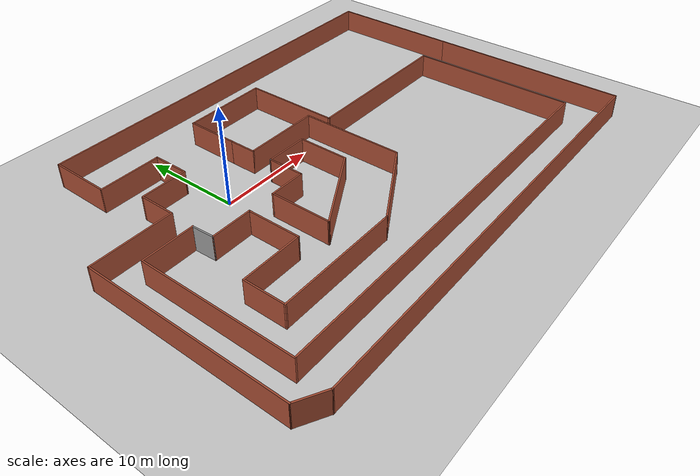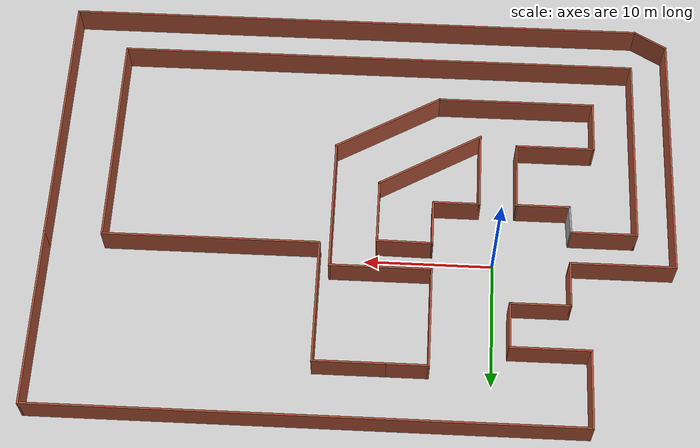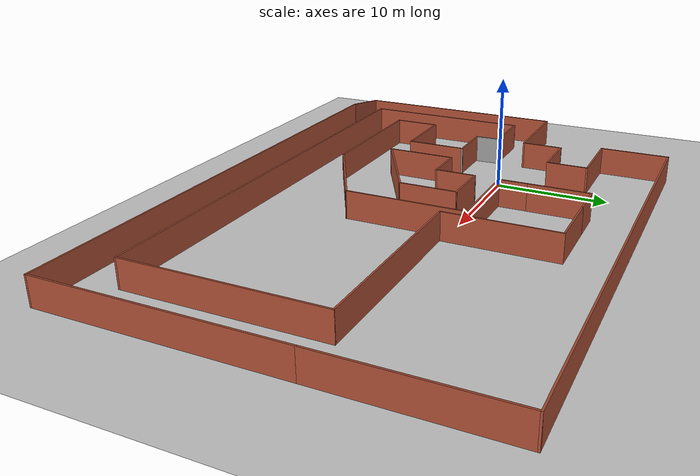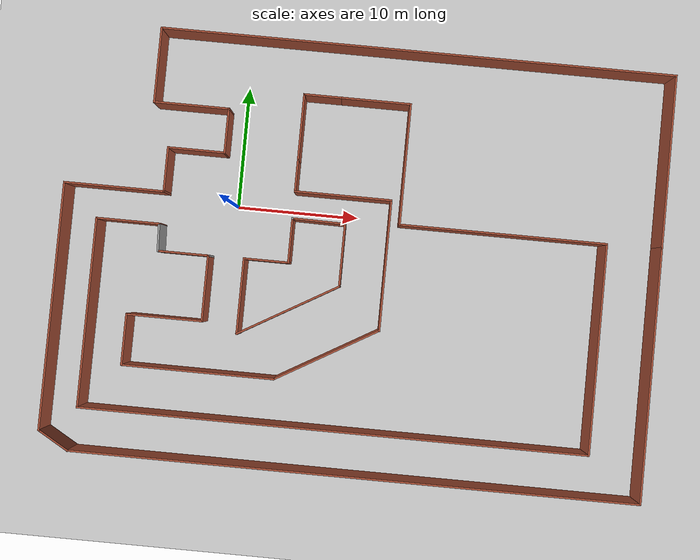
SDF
<sdf version="1.7">
 <world name="default">
  <light name="sun" type="directional">
   <pose>0 0 10 0 -0 0</pose>
   <diffuse>0.8 0.8 0.8 1</diffuse>
   <specular>0.2 0.2 0.2 1</specular>
   <attenuation>
    <range>1000</range>
    <constant>0.9</constant>
    <linear>0.01</linear>
    <quadratic>0.001</quadratic>
   </attenuation>
   <direction>-0.5 0.1 -0.9</direction>
   <spot><inner_angle>0</inner_angle><outer_angle>0</outer_angle><falloff>0</falloff></spot>
  </light>
  <model name="ground_plane">
   <static>1</static>
   <link name="link">
    <collision name="collision">
     <geometry><plane><normal>0 0 1</normal><size>100 100</size></plane></geometry>
     <surface><friction><ode><mu>100</mu><mu2>50</mu2></ode></friction></surface>
    </collision>
    <visual name="visual">
     <cast_shadows>0</cast_shadows>
     <geometry><plane><normal>0 0 1</normal><size>100 100</size></plane></geometry>
     <material>
      <script><uri>file://media/materials/scripts/gazebo.material</uri><name>Gazebo/Grey</name></script>
     </material>
    </visual>
   </link>
  </model>
  <gravity>0 0 -9.8</gravity>
  <magnetic_field>6e-06 2.3e-05 -4.2e-05</magnetic_field>
  <atmosphere type="adiabatic"/>
  <physics type="ode">
   <max_step_size>0.001</max_step_size>
   <real_time_factor>1</real_time_factor>
   <real_time_update_rate>1000</real_time_update_rate>
  </physics>
  <scene><ambient>0.4 0.4 0.4 1</ambient><background>0.7 0.7 0.7 1</background><shadows>1</shadows></scene>
  <spherical_coordinates>
   <surface_model>EARTH_WGS84</surface_model>
   <latitude_deg>0</latitude_deg>
   <longitude_deg>0</longitude_deg>
   <elevation>0</elevation>
   <heading_deg>0</heading_deg>
  </spherical_coordinates>
  <model name="long_loof_model">
   <pose>10.4182 -3.58846 0 0 -0 0</pose>
   <link name="Wall_10">
    <collision name="Wall_10_Collision">
     <geometry><box><size>3.75 0.15 2.5</size></box></geometry>
     <pose>0 0 1.25 0 -0 0</pose>
    </collision>
    <visual name="Wall_10_Visual">
     <pose>0 0 1.25 0 -0 0</pose>
     <geometry><box><size>3.75 0.15 2.5</size></box></geometry>
     <material>
      <script><uri>file://media/materials/scripts/gazebo.material</uri><name>Gazebo/Bricks</name></script>
      <ambient>1 1 1 1</ambient>
     </material>
     <meta><layer>0</layer></meta>
    </visual>
    <pose>-7.4308 -0.683311 0 0 -0 3.14159</pose>
   </link>
   <link name="Wall_11">
    <collision name="Wall_11_Collision">
     <geometry><box><size>0.16 0.15 2.5</size></box></geometry>
     <pose>0 0 1.25 0 -0 0</pose>
    </collision>
    <visual name="Wall_11_Visual">
     <pose>0 0 1.25 0 -0 0</pose>
     <geometry><box><size>0.16 0.15 2.5</size></box></geometry>
     <material>
      <script><uri>file://media/materials/scripts/gazebo.material</uri><name>Gazebo/Grey</name></script>
      <ambient>0 0 0 1</ambient>
     </material>
     <meta><layer>0</layer></meta>
    </visual>
    <pose>-9.2258 -0.683311 0 0 -0 0</pose>
   </link>
   <link name="Wall_13">
    <collision name="Wall_13_Collision">
     <geometry><box><size>4.25 0.15 2.5</size></box></geometry>
     <pose>0 0 1.25 0 -0 0</pose>
    </collision>
    <visual name="Wall_13_Visual">
     <pose>0 0 1.25 0 -0 0</pose>
     <geometry><box><size>4.25 0.15 2.5</size></box></geometry>
     <material>
      <script><uri>file://media/materials/scripts/gazebo.material</uri><name>Gazebo/Bricks</name></script>
      <ambient>1 1 1 1</ambient>
     </material>
     <meta><layer>0</layer></meta>
    </visual>
    <pose>-14.1883 -0.724218 0 0 -0 0</pose>
   </link>
   <link name="Wall_14">
    <collision name="Wall_14_Collision">
     <geometry><box><size>0.16 0.15 2.5</size></box></geometry>
     <pose>0 0 1.25 0 -0 0</pose>
    </collision>
    <visual name="Wall_14_Visual">
     <pose>0 0 1.25 0 -0 0</pose>
     <geometry><box><size>0.16 0.15 2.5</size></box></geometry>
     <material>
      <script><uri>file://media/materials/scripts/gazebo.material</uri><name>Gazebo/Grey</name></script>
      <ambient>0 0 0 1</ambient>
     </material>
     <meta><layer>0</layer></meta>
    </visual>
    <pose>-12.1333 -0.724218 0 0 -0 0</pose>
   </link>
   <link name="Wall_15">
    <collision name="Wall_15_Collision">
     <geometry><box><size>8 0.15 2.5</size></box></geometry>
     <pose>0 0 1.25 0 -0 0</pose>
    </collision>
    <visual name="Wall_15_Visual">
     <pose>0 0 1.25 0 -0 0</pose>
     <geometry><box><size>8 0.15 2.5</size></box></geometry>
     <material>
      <script><uri>file://media/materials/scripts/gazebo.material</uri><name>Gazebo/Bricks</name></script>
      <ambient>1 1 1 1</ambient>
     </material>
     <meta><layer>0</layer></meta>
    </visual>
    <pose>-1.71325 5.12578 0 0 -0 0</pose>
   </link>
   <link name="Wall_16">
    <collision name="Wall_16_Collision">
     <geometry><box><size>10.75 0.15 2.5</size></box></geometry>
     <pose>0 0 1.25 0 -0 0</pose>
    </collision>
    <visual name="Wall_16_Visual">
     <pose>0 0 1.25 0 -0 0</pose>
     <geometry><box><size>10.75 0.15 2.5</size></box></geometry>
     <material>
      <script><uri>file://media/materials/scripts/gazebo.material</uri><name>Gazebo/Bricks</name></script>
      <ambient>1 1 1 1</ambient>
     </material>
     <meta><layer>0</layer></meta>
    </visual>
    <pose>2.21175 -0.174218 0 0 -0 -1.5708</pose>
   </link>
   <link name="Wall_17">
    <collision name="Wall_17_Collision">
     <geometry><box><size>9.5 0.15 2.5</size></box></geometry>
     <pose>0 0 1.25 0 -0 0</pose>
    </collision>
    <visual name="Wall_17_Visual">
     <pose>0 0 1.25 0 -0 0</pose>
     <geometry><box><size>9.5 0.15 2.5</size></box></geometry>
     <material>
      <script><uri>file://media/materials/scripts/gazebo.material</uri><name>Gazebo/Bricks</name></script>
      <ambient>1 1 1 1</ambient>
     </material>
     <meta><layer>0</layer></meta>
    </visual>
    <pose>-1.83692 -7.81172 0 0 -0 -2.61799</pose>
   </link>
   <link name="Wall_18">
    <collision name="Wall_18_Collision">
     <geometry><box><size>12.5 0.15 2.5</size></box></geometry>
     <pose>0 0 1.25 0 -0 0</pose>
    </collision>
    <visual name="Wall_18_Visual">
     <pose>0 0 1.25 0 -0 0</pose>
     <geometry><box><size>12.5 0.15 2.5</size></box></geometry>
     <material>
      <script><uri>file://media/materials/scripts/gazebo.material</uri><name>Gazebo/Bricks</name></script>
      <ambient>1 1 1 1</ambient>
     </material>
     <meta><layer>0</layer></meta>
    </visual>
    <pose>-12.0606 -10.1492 0 0 -0 3.14159</pose>
   </link>
   <link name="Wall_19">
    <collision name="Wall_19_Collision">
     <geometry><box><size>4.25 0.15 2.5</size></box></geometry>
     <pose>0 0 1.25 0 -0 0</pose>
    </collision>
    <visual name="Wall_19_Visual">
     <pose>0 0 1.25 0 -0 0</pose>
     <geometry><box><size>4.25 0.15 2.5</size></box></geometry>
     <material>
      <script><uri>file://media/materials/scripts/gazebo.material</uri><name>Gazebo/Bricks</name></script>
      <ambient>1 1 1 1</ambient>
     </material>
     <meta><layer>0</layer></meta>
    </visual>
    <pose>-18.2356 -8.09922 0 0 -0 1.5708</pose>
   </link>
   <link name="Wall_20">
    <collision name="Wall_20_Collision">
     <geometry><box><size>6.25 0.15 2.5</size></box></geometry>
     <pose>0 0 1.25 0 -0 0</pose>
    </collision>
    <visual name="Wall_20_Visual">
     <pose>0 0 1.25 0 -0 0</pose>
     <geometry><box><size>6.25 0.15 2.5</size></box></geometry>
     <material>
      <script><uri>file://media/materials/scripts/gazebo.material</uri><name>Gazebo/Bricks</name></script>
      <ambient>1 1 1 1</ambient>
     </material>
     <meta><layer>0</layer></meta>
    </visual>
    <pose>-15.1856 -6.04922 0 0 -0 0</pose>
   </link>
   <link name="Wall_21">
    <collision name="Wall_21_Collision">
     <geometry><box><size>5.475 0.15 2.5</size></box></geometry>
     <pose>0 0 1.25 0 -0 0</pose>
    </collision>
    <visual name="Wall_21_Visual">
     <pose>0 0 1.25 0 -0 0</pose>
     <geometry><box><size>5.475 0.15 2.5</size></box></geometry>
     <material>
      <script><uri>file://media/materials/scripts/gazebo.material</uri><name>Gazebo/Bricks</name></script>
      <ambient>1 1 1 1</ambient>
     </material>
     <meta><layer>0</layer></meta>
    </visual>
    <pose>-12.1369 -3.38672 0 0 -0 1.5713</pose>
   </link>
   <link name="Wall_22">
    <collision name="Wall_22_Collision">
     <geometry><box><size>0.16 0.15 2.5</size></box></geometry>
     <pose>0 0 1.25 0 -0 0</pose>
    </collision>
    <visual name="Wall_22_Visual">
     <pose>0 0 1.25 0 -0 0</pose>
     <geometry><box><size>0.16 0.15 2.5</size></box></geometry>
     <material>
      <script><uri>file://media/materials/scripts/gazebo.material</uri><name>Gazebo/Grey</name></script>
      <ambient>0 0 0 1</ambient>
     </material>
     <meta><layer>0</layer></meta>
    </visual>
    <pose>-12.1333 -0.724218 0 0 -0 0</pose>
   </link>
   <link name="Wall_23">
    <collision name="Wall_23_Collision">
     <geometry><box><size>6.25 0.15 2.5</size></box></geometry>
     <pose>0 0 1.25 0 -0 0</pose>
    </collision>
    <visual name="Wall_23_Visual">
     <pose>0 0 1.25 0 -0 0</pose>
     <geometry><box><size>6.25 0.15 2.5</size></box></geometry>
     <material>
      <script><uri>file://media/materials/scripts/gazebo.material</uri><name>Gazebo/Bricks</name></script>
      <ambient>1 1 1 1</ambient>
     </material>
     <meta><layer>0</layer></meta>
    </visual>
    <pose>-9.2308 -3.73331 0 0 -0 -1.5708</pose>
   </link>
   <link name="Wall_24">
    <collision name="Wall_24_Collision">
     <geometry><box><size>9.25 0.15 2.5</size></box></geometry>
     <pose>0 0 1.25 0 -0 0</pose>
    </collision>
    <visual name="Wall_24_Visual">
     <pose>0 0 1.25 0 -0 0</pose>
     <geometry><box><size>9.25 0.15 2.5</size></box></geometry>
     <material>
      <script><uri>file://media/materials/scripts/gazebo.material</uri><name>Gazebo/Bricks</name></script>
      <ambient>1 1 1 1</ambient>
     </material>
     <meta><layer>0</layer></meta>
    </visual>
    <pose>-5.29038 -4.50831 0 0 -0 0.523599</pose>
   </link>
   <link name="Wall_25">
    <collision name="Wall_25_Collision">
     <geometry><box><size>5.25 0.15 2.5</size></box></geometry>
     <pose>0 0 1.25 0 -0 0</pose>
    </collision>
    <visual name="Wall_25_Visual">
     <pose>0 0 1.25 0 -0 0</pose>
     <geometry><box><size>5.25 0.15 2.5</size></box></geometry>
     <material>
      <script><uri>file://media/materials/scripts/gazebo.material</uri><name>Gazebo/Bricks</name></script>
      <ambient>1 1 1 1</ambient>
     </material>
     <meta><layer>0</layer></meta>
    </visual>
    <pose>-1.34997 0.316689 0 0 -0 1.5708</pose>
   </link>
   <link name="Wall_26">
    <collision name="Wall_26_Collision">
     <geometry><box><size>4.43112 0.15 2.5</size></box></geometry>
     <pose>0 0 1.25 0 -0 0</pose>
    </collision>
    <visual name="Wall_26_Visual">
     <pose>0 0 1.25 0 -0 0</pose>
     <geometry><box><size>4.43112 0.15 2.5</size></box></geometry>
     <material>
      <script><uri>file://media/materials/scripts/gazebo.material</uri><name>Gazebo/Bricks</name></script>
      <ambient>1 1 1 1</ambient>
     </material>
     <meta><layer>0</layer></meta>
    </visual>
    <pose>-3.49038 2.89169 0 0 -0 3.12991</pose>
   </link>
   <link name="Wall_27">
    <collision name="Wall_27_Collision">
     <geometry><box><size>0.16 0.15 2.5</size></box></geometry>
     <pose>0 0 1.25 0 -0 0</pose>
    </collision>
    <visual name="Wall_27_Visual">
     <pose>0 0 1.25 0 -0 0</pose>
     <geometry><box><size>0.16 0.15 2.5</size></box></geometry>
     <material>
      <script><uri>file://media/materials/scripts/gazebo.material</uri><name>Gazebo/Grey</name></script>
      <ambient>0 0 0 1</ambient>
     </material>
     <meta><layer>0</layer></meta>
    </visual>
    <pose>-5.6258 2.91669 0 0 -0 0</pose>
   </link>
   <link name="Wall_28">
    <collision name="Wall_28_Collision">
     <geometry><box><size>4.75 0.15 2.5</size></box></geometry>
     <pose>0 0 1.25 0 -0 0</pose>
    </collision>
    <visual name="Wall_28_Visual">
     <pose>0 0 1.25 0 -0 0</pose>
     <geometry><box><size>4.75 0.15 2.5</size></box></geometry>
     <material>
      <script><uri>file://media/materials/scripts/gazebo.material</uri><name>Gazebo/Bricks</name></script>
      <ambient>1 1 1 1</ambient>
     </material>
     <meta><layer>0</layer></meta>
    </visual>
    <pose>-13.9383 7.72578 0 0 -0 0</pose>
   </link>
   <link name="Wall_29">
    <collision name="Wall_29_Collision">
     <geometry><box><size>3.75 0.15 2.5</size></box></geometry>
     <pose>0 0 1.25 0 -0 0</pose>
    </collision>
    <visual name="Wall_29_Visual">
     <pose>0 0 1.25 0 -0 0</pose>
     <geometry><box><size>3.75 0.15 2.5</size></box></geometry>
     <material>
      <script><uri>file://media/materials/scripts/gazebo.material</uri><name>Gazebo/Bricks</name></script>
      <ambient>1 1 1 1</ambient>
     </material>
     <meta><layer>0</layer></meta>
    </visual>
    <pose>-11.6383 9.52578 0 0 -0 1.5708</pose>
   </link>
   <link name="Wall_30">
    <collision name="Wall_30_Collision">
     <geometry><box><size>6.25 0.15 2.5</size></box></geometry>
     <pose>0 0 1.25 0 -0 0</pose>
    </collision>
    <visual name="Wall_30_Visual">
     <pose>0 0 1.25 0 -0 0</pose>
     <geometry><box><size>6.25 0.15 2.5</size></box></geometry>
     <material>
      <script><uri>file://media/materials/scripts/gazebo.material</uri><name>Gazebo/Bricks</name></script>
      <ambient>1 1 1 1</ambient>
     </material>
     <meta><layer>0</layer></meta>
    </visual>
    <pose>-14.6883 11.3258 0 0 -0 3.14159</pose>
   </link>
   <link name="Wall_31">
    <collision name="Wall_31_Collision">
     <geometry><box><size>6.25 0.15 2.5</size></box></geometry>
     <pose>0 0 1.25 0 -0 0</pose>
    </collision>
    <visual name="Wall_31_Visual">
     <pose>0 0 1.25 0 -0 0</pose>
     <geometry><box><size>6.25 0.15 2.5</size></box></geometry>
     <material>
      <script><uri>file://media/materials/scripts/gazebo.material</uri><name>Gazebo/Bricks</name></script>
      <ambient>1 1 1 1</ambient>
     </material>
     <meta><layer>0</layer></meta>
    </visual>
    <pose>-17.7382 14.376 0 0 -0 1.57078</pose>
   </link>
   <link name="Wall_32">
    <collision name="Wall_32_Collision">
     <geometry><box><size>42.254 0.15 2.5</size></box></geometry>
     <pose>0 0 1.25 0 -0 0</pose>
    </collision>
    <visual name="Wall_32_Visual">
     <pose>0 0 1.25 0 -0 0</pose>
     <geometry><box><size>42.254 0.15 2.5</size></box></geometry>
     <material>
      <script><uri>file://media/materials/scripts/gazebo.material</uri><name>Gazebo/Bricks</name></script>
      <ambient>1 1 1 1</ambient>
     </material>
     <meta><layer>0</layer></meta>
    </visual>
    <pose>3.31384 17.4263 0 0 -0 0</pose>
   </link>
   <link name="Wall_33">
    <collision name="Wall_33_Collision">
     <geometry><box><size>14.25 0.15 2.5</size></box></geometry>
     <pose>0 0 1.25 0 -0 0</pose>
    </collision>
    <visual name="Wall_33_Visual">
     <pose>0 0 1.25 0 -0 0</pose>
     <geometry><box><size>14.25 0.15 2.5</size></box></geometry>
     <material>
      <script><uri>file://media/materials/scripts/gazebo.material</uri><name>Gazebo/Bricks</name></script>
      <ambient>1 1 1 1</ambient>
     </material>
     <meta><layer>0</layer></meta>
    </visual>
    <pose>24.3658 10.3763 0 0 -0 -1.5708</pose>
   </link>
   <link name="Wall_37">
    <collision name="Wall_37_Collision">
     <geometry><box><size>5.5 0.15 2.5</size></box></geometry>
     <pose>0 0 1.25 0 -0 0</pose>
    </collision>
    <visual name="Wall_37_Visual">
     <pose>0 0 1.25 0 -0 0</pose>
     <geometry><box><size>5.5 0.15 2.5</size></box></geometry>
     <material>
      <script><uri>file://media/materials/scripts/gazebo.material</uri><name>Gazebo/Bricks</name></script>
      <ambient>1 1 1 1</ambient>
     </material>
     <meta><layer>0</layer></meta>
    </visual>
    <pose>-5.63825 10.4008 0 0 -0 1.5708</pose>
   </link>
   <link name="Wall_38">
    <collision name="Wall_38_Collision">
     <geometry><box><size>3.25 0.15 2.5</size></box></geometry>
     <pose>0 0 1.25 0 -0 0</pose>
    </collision>
    <visual name="Wall_38_Visual">
     <pose>0 0 1.25 0 -0 0</pose>
     <geometry><box><size>3.25 0.15 2.5</size></box></geometry>
     <material>
      <script><uri>file://media/materials/scripts/gazebo.material</uri><name>Gazebo/Bricks</name></script>
      <ambient>1 1 1 1</ambient>
     </material>
     <meta><layer>0</layer></meta>
    </visual>
    <pose>-4.08825 13.0758 0 0 -0 0</pose>
   </link>
   <link name="Wall_51">
    <collision name="Wall_51_Collision">
     <geometry><box><size>5.75 0.15 2.5</size></box></geometry>
     <pose>0 0 1.25 0 -0 0</pose>
    </collision>
    <visual name="Wall_51_Visual">
     <pose>0 0 1.25 0 -0 0</pose>
     <geometry><box><size>5.75 0.15 2.5</size></box></geometry>
     <material>
      <script><uri>file://media/materials/scripts/gazebo.material</uri><name>Gazebo/Bricks</name></script>
      <ambient>1 1 1 1</ambient>
     </material>
     <meta><layer>0</layer></meta>
    </visual>
    <pose>0.261748 13.0758 0 0 -0 0</pose>
   </link>
   <link name="Wall_52">
    <collision name="Wall_52_Collision">
     <geometry><box><size>10 0.15 2.5</size></box></geometry>
     <pose>0 0 1.25 0 -0 0</pose>
    </collision>
    <visual name="Wall_52_Visual">
     <pose>0 0 1.25 0 -0 0</pose>
     <geometry><box><size>10 0.15 2.5</size></box></geometry>
     <material>
      <script><uri>file://media/materials/scripts/gazebo.material</uri><name>Gazebo/Bricks</name></script>
      <ambient>1 1 1 1</ambient>
     </material>
     <meta><layer>0</layer></meta>
    </visual>
    <pose>3.06175 8.15078 0 0 -0 -1.5708</pose>
   </link>
   <link name="Wall_56">
    <collision name="Wall_56_Collision">
     <geometry><box><size>17 0.15 2.5</size></box></geometry>
     <pose>0 0 1.25 0 -0 0</pose>
    </collision>
    <visual name="Wall_56_Visual">
     <pose>0 0 1.25 0 -0 0</pose>
     <geometry><box><size>17 0.15 2.5</size></box></geometry>
     <material>
      <script><uri>file://media/materials/scripts/gazebo.material</uri><name>Gazebo/Bricks</name></script>
      <ambient>1 1 1 1</ambient>
     </material>
     <meta><layer>0</layer></meta>
    </visual>
    <pose>11.4867 3.22578 0 0 -0 0</pose>
   </link>
   <link name="Wall_57">
    <collision name="Wall_57_Collision">
     <geometry><box><size>17.25 0.15 2.5</size></box></geometry>
     <pose>0 0 1.25 0 -0 0</pose>
    </collision>
    <visual name="Wall_57_Visual">
     <pose>0 0 1.25 0 -0 0</pose>
     <geometry><box><size>17.25 0.15 2.5</size></box></geometry>
     <material>
      <script><uri>file://media/materials/scripts/gazebo.material</uri><name>Gazebo/Bricks</name></script>
      <ambient>1 1 1 1</ambient>
     </material>
     <meta><layer>0</layer></meta>
    </visual>
    <pose>19.9117 -5.32422 0 0 -0 -1.5708</pose>
   </link>
   <link name="Wall_58">
    <collision name="Wall_58_Collision">
     <geometry><box><size>41.5 0.15 2.5</size></box></geometry>
     <pose>0 0 1.25 0 -0 0</pose>
    </collision>
    <visual name="Wall_58_Visual">
     <pose>0 0 1.25 0 -0 0</pose>
     <geometry><box><size>41.5 0.15 2.5</size></box></geometry>
     <material>
      <script><uri>file://media/materials/scripts/gazebo.material</uri><name>Gazebo/Bricks</name></script>
      <ambient>1 1 1 1</ambient>
     </material>
     <meta><layer>0</layer></meta>
    </visual>
    <pose>-0.763252 -13.8742 0 0 -0 3.14159</pose>
   </link>
   <link name="Wall_59">
    <collision name="Wall_59_Collision">
     <geometry><box><size>15.5 0.15 2.5</size></box></geometry>
     <pose>0 0 1.25 0 -0 0</pose>
    </collision>
    <visual name="Wall_59_Visual">
     <pose>0 0 1.25 0 -0 0</pose>
     <geometry><box><size>15.5 0.15 2.5</size></box></geometry>
     <material>
      <script><uri>file://media/materials/scripts/gazebo.material</uri><name>Gazebo/Bricks</name></script>
      <ambient>1 1 1 1</ambient>
     </material>
     <meta><layer>0</layer></meta>
    </visual>
    <pose>-21.4383 -6.19922 0 0 -0 1.5708</pose>
   </link>
   <link name="Wall_60">
    <collision name="Wall_60_Collision">
     <geometry><box><size>5.25 0.15 2.5</size></box></geometry>
     <pose>0 0 1.25 0 -0 0</pose>
    </collision>
    <visual name="Wall_60_Visual">
     <pose>0 0 1.25 0 -0 0</pose>
     <geometry><box><size>5.25 0.15 2.5</size></box></geometry>
     <material>
      <script><uri>file://media/materials/scripts/gazebo.material</uri><name>Gazebo/Bricks</name></script>
      <ambient>1 1 1 1</ambient>
     </material>
     <meta><layer>0</layer></meta>
    </visual>
    <pose>-18.8883 1.47578 0 0 -0 0</pose>
   </link>
   <link name="Wall_62">
    <collision name="Wall_62_Collision">
     <geometry><box><size>2.35227 0.15 2.5</size></box></geometry>
     <pose>0 0 1.25 0 -0 0</pose>
    </collision>
    <visual name="Wall_62_Visual">
     <pose>0 0 1.25 0 -0 0</pose>
     <geometry><box><size>2.35227 0.15 2.5</size></box></geometry>
     <material>
      <script><uri>file://media/materials/scripts/gazebo.material</uri><name>Gazebo/Grey</name></script>
      <ambient>1 1 1 1</ambient>
     </material>
     <meta><layer>0</layer></meta>
    </visual>
    <pose>-16.2883 0.375782 0 0 -0 -1.52537</pose>
   </link>
   <link name="Wall_64">
    <collision name="Wall_64_Collision">
     <geometry><box><size>3.75 0.15 2.5</size></box></geometry>
     <pose>0 0 1.25 0 -0 0</pose>
    </collision>
    <visual name="Wall_64_Visual">
     <pose>0 0 1.25 0 -0 0</pose>
     <geometry><box><size>3.75 0.15 2.5</size></box></geometry>
     <material>
      <script><uri>file://media/materials/scripts/gazebo.material</uri><name>Gazebo/Bricks</name></script>
      <ambient>1 1 1 1</ambient>
     </material>
     <meta><layer>0</layer></meta>
    </visual>
    <pose>-16.2383 5.92578 0 0 -0 -1.5708</pose>
   </link>
   <link name="Wall_65">
    <collision name="Wall_65_Collision">
     <geometry><box><size>8.25 0.15 2.5</size></box></geometry>
     <pose>0 0 1.25 0 -0 0</pose>
    </collision>
    <visual name="Wall_65_Visual">
     <pose>0 0 1.25 0 -0 0</pose>
     <geometry><box><size>8.25 0.15 2.5</size></box></geometry>
     <material>
      <script><uri>file://media/materials/scripts/gazebo.material</uri><name>Gazebo/Bricks</name></script>
      <ambient>1 1 1 1</ambient>
     </material>
     <meta><layer>0</layer></meta>
    </visual>
    <pose>-20.2883 4.12578 0 0 -0 3.14159</pose>
   </link>
   <link name="Wall_66">
    <collision name="Wall_66_Collision">
     <geometry><box><size>20.25 0.15 2.5</size></box></geometry>
     <pose>0 0 1.25 0 -0 0</pose>
    </collision>
    <visual name="Wall_66_Visual">
     <pose>0 0 1.25 0 -0 0</pose>
     <geometry><box><size>20.25 0.15 2.5</size></box></geometry>
     <material>
      <script><uri>file://media/materials/scripts/gazebo.material</uri><name>Gazebo/Bricks</name></script>
      <ambient>1 1 1 1</ambient>
     </material>
     <meta><layer>0</layer></meta>
    </visual>
    <pose>-24.3383 -5.92422 0 0 -0 -1.5708</pose>
   </link>
   <link name="Wall_67">
    <collision name="Wall_67_Collision">
     <geometry><box><size>3 0.15 2.5</size></box></geometry>
     <pose>0 0 1.25 0 -0 0</pose>
    </collision>
    <visual name="Wall_67_Visual">
     <pose>0 0 1.25 0 -0 0</pose>
     <geometry><box><size>3 0.15 2.5</size></box></geometry>
     <material>
      <script><uri>file://media/materials/scripts/gazebo.material</uri><name>Gazebo/Bricks</name></script>
      <ambient>1 1 1 1</ambient>
     </material>
     <meta><layer>0</layer></meta>
    </visual>
    <pose>-23.1042 -16.6865 0 0 -0 -0.523467</pose>
   </link>
   <link name="Wall_68">
    <collision name="Wall_68_Collision">
     <geometry><box><size>46.386 0.15 2.5</size></box></geometry>
     <pose>0 0 1.25 0 -0 0</pose>
    </collision>
    <visual name="Wall_68_Visual">
     <pose>0 0 1.25 0 -0 0</pose>
     <geometry><box><size>46.386 0.15 2.5</size></box></geometry>
     <material>
      <script><uri>file://media/materials/scripts/gazebo.material</uri><name>Gazebo/Bricks</name></script>
      <ambient>1 1 1 1</ambient>
     </material>
     <meta><layer>0</layer></meta>
    </visual>
    <pose>1.24784 -17.3987 0 0 -0 0</pose>
   </link>
   <link name="Wall_69">
    <collision name="Wall_69_Collision">
     <geometry><box><size>20.876 0.15 2.5</size></box></geometry>
     <pose>0 0 1.25 0 -0 0</pose>
    </collision>
    <visual name="Wall_69_Visual">
     <pose>0 0 1.25 0 -0 0</pose>
     <geometry><box><size>20.876 0.15 2.5</size></box></geometry>
     <material>
      <script><uri>file://media/materials/scripts/gazebo.material</uri><name>Gazebo/Bricks</name></script>
      <ambient>1 1 1 1</ambient>
     </material>
     <meta><layer>0</layer></meta>
    </visual>
    <pose>24.3658 -7.03624 0 0 -0 1.5708</pose>
   </link>
   <link name="Wall_7">
    <collision name="Wall_7_Collision">
     <geometry><box><size>2.75 0.15 2.5</size></box></geometry>
     <pose>0 0 1.25 0 -0 0</pose>
    </collision>
    <visual name="Wall_7_Visual">
     <pose>0 0 1.25 0 -0 0</pose>
     <geometry><box><size>2.75 0.15 2.5</size></box></geometry>
     <material>
      <script><uri>file://media/materials/scripts/gazebo.material</uri><name>Gazebo/Bricks</name></script>
      <ambient>1 1 1 1</ambient>
     </material>
     <meta><layer>0</layer></meta>
    </visual>
    <pose>-5.63825 6.42578 0 0 -0 -1.5708</pose>
   </link>
   <link name="Wall_9">
    <collision name="Wall_9_Collision">
     <geometry><box><size>3.75 0.15 2.5</size></box></geometry>
     <pose>0 0 1.25 0 -0 0</pose>
    </collision>
    <visual name="Wall_9_Visual">
     <pose>0 0 1.25 0 -0 0</pose>
     <geometry><box><size>3.75 0.15 2.5</size></box></geometry>
     <material>
      <script><uri>file://media/materials/scripts/gazebo.material</uri><name>Gazebo/Bricks</name></script>
      <ambient>1 1 1 1</ambient>
     </material>
     <meta><layer>0</layer></meta>
    </visual>
    <pose>-5.6308 1.11669 0 0 -0 -1.5708</pose>
   </link>
   <static>1</static>
  </model>
 </world>
</sdf>
